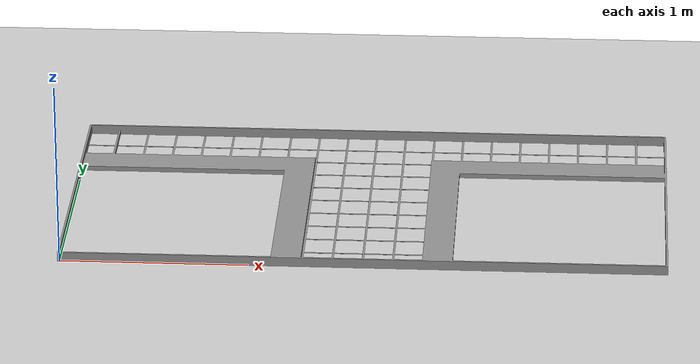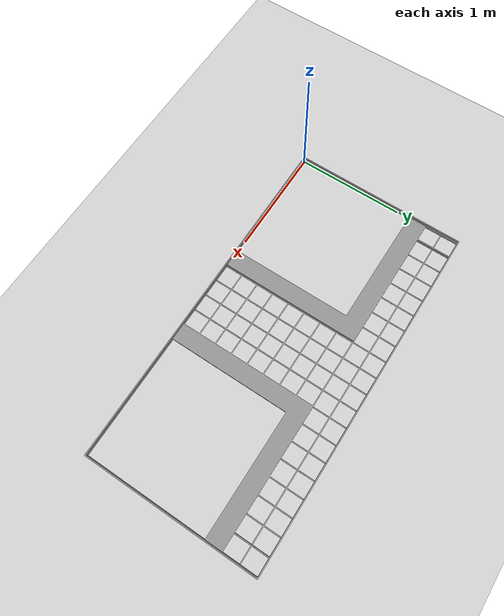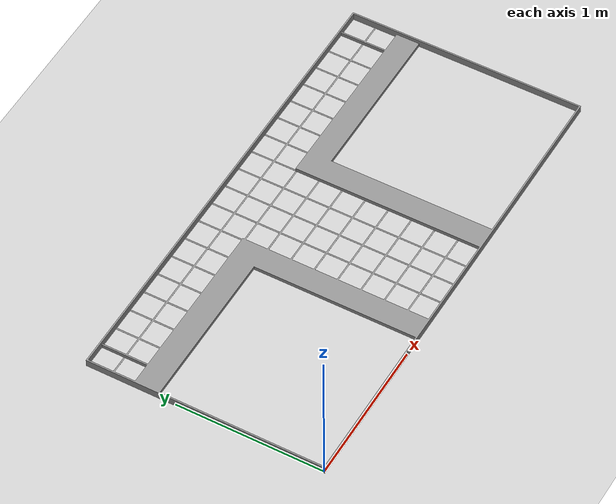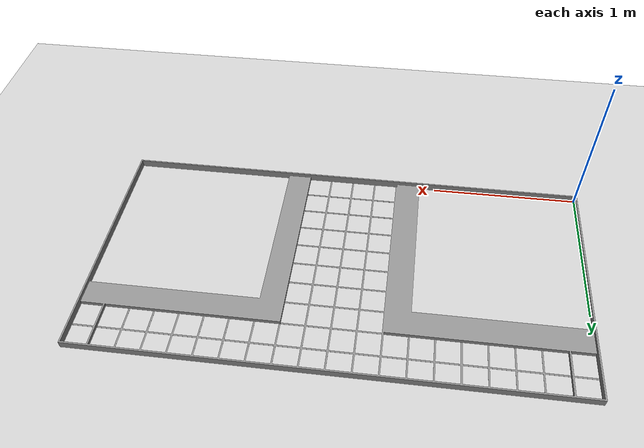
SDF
<?xml version="1.0" encoding="UTF-8"?>
<sdf version="1.5">
    <world name="default">
        <include>
            <uri>model://ground_plane</uri>
        </include>
        <include>
            <uri>model://sun</uri>
        </include>
        <include>
            <uri>model://round1_arena</uri>
            <pose>0 0 0 0 0 1.57079632679</pose>
        </include>
    </world>
</sdf>

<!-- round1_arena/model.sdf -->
<sdf version="1.5">
    <model name="round1_arena">
        <static>true</static>
        <pose> 0 0 0 0 0 0 </pose>
        <link name = "arena">
            <collision name="collision">
                <geometry>
                    <mesh>
                        <uri>model://round1_arena/meshes/arena_base.stl</uri>
                        <scale>0.001 0.001 0.001</scale>
                    </mesh>
                </geometry>
            </collision>
            <visual name="visual">
                <geometry>
                    <mesh>
                        <uri>model://round1_arena/meshes/arena_base.stl</uri>
                        <scale>0.001 0.001 0.001</scale>
                    </mesh>
                </geometry>
                <cast_shadows>false</cast_shadows>
                <material>
                    <ambient>0.1 0.1 0.1 1.0</ambient>
                    <diffuse>0.56666695 0.56666695 0.56666695 1.0</diffuse>
                    <specular>0.6000003 0.6000003 0.6000003 1.0</specular>
                    <lighting>1</lighting>
                </material>
            </visual>
        </link>
    </model>
</sdf>
